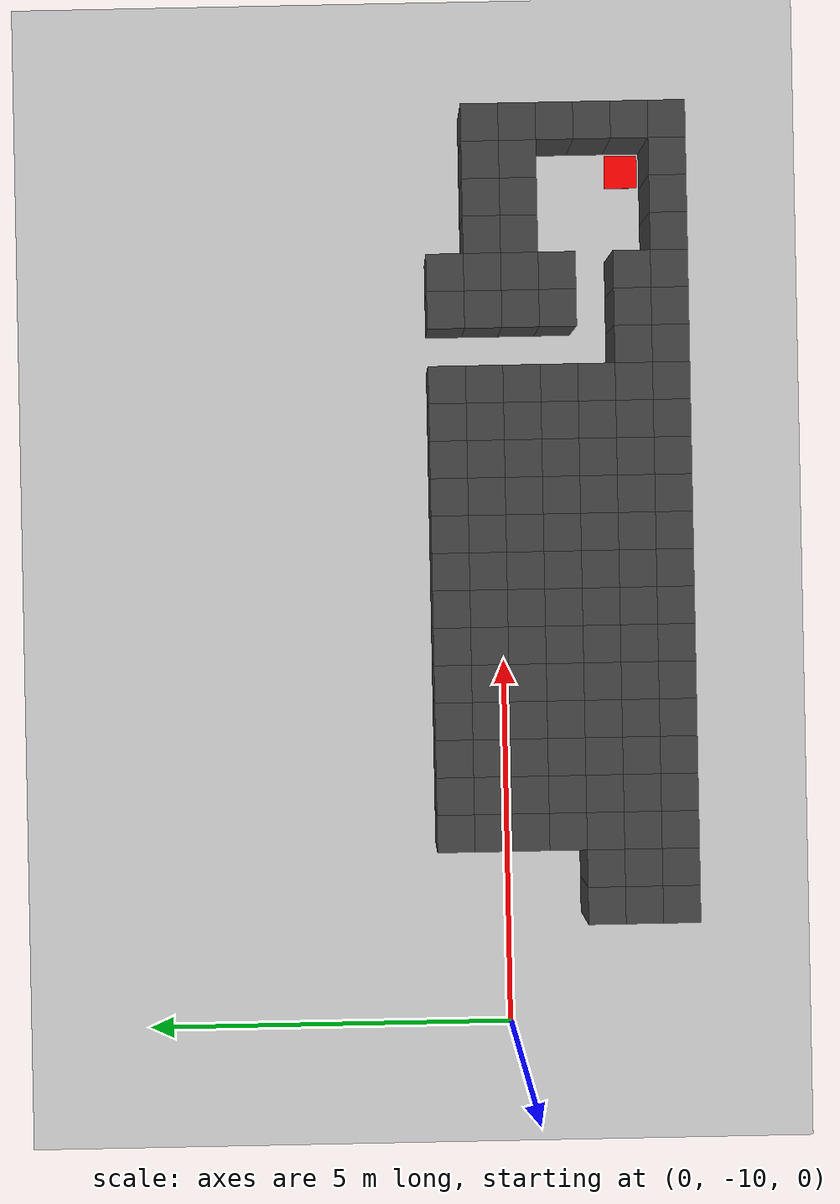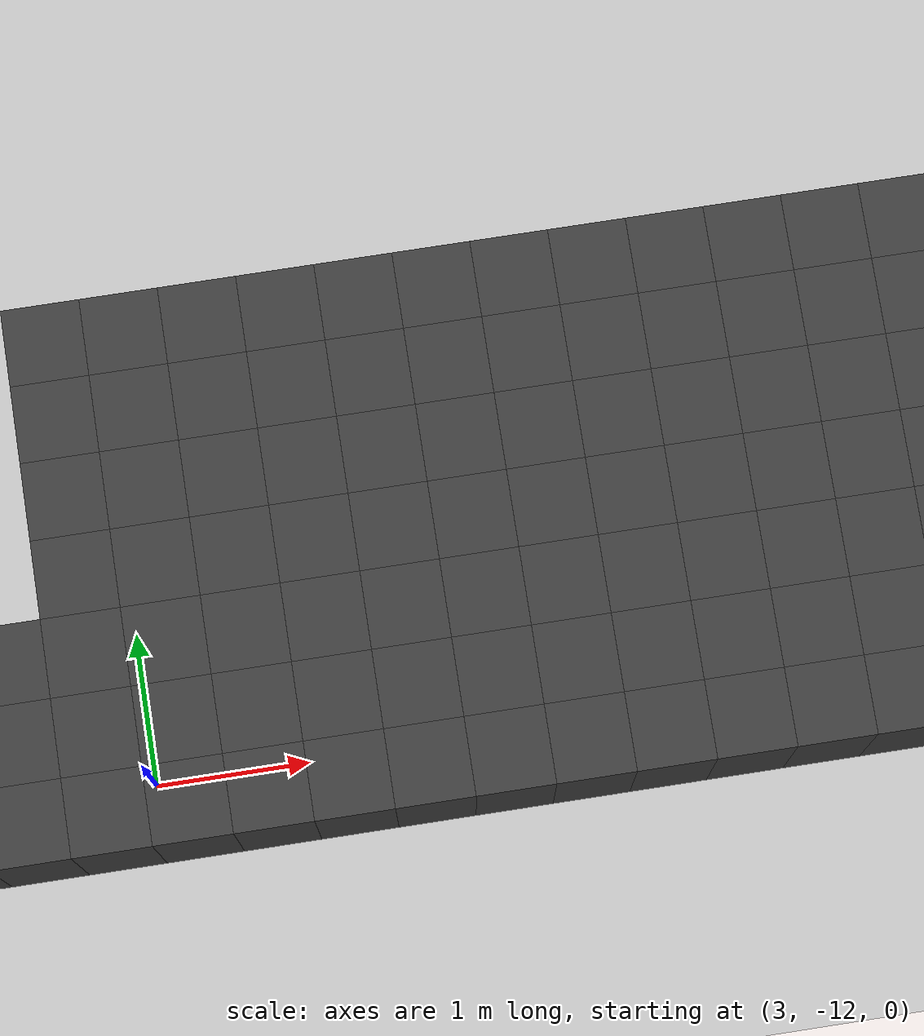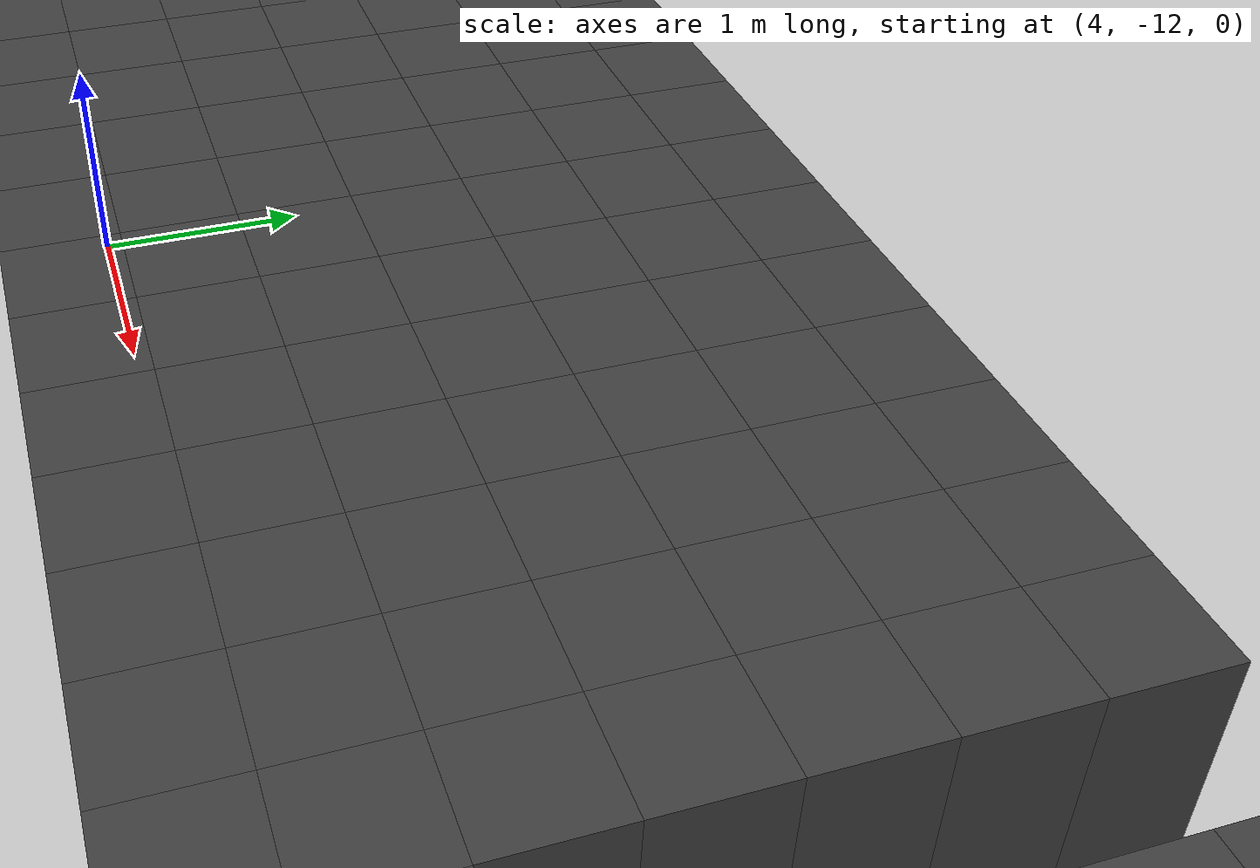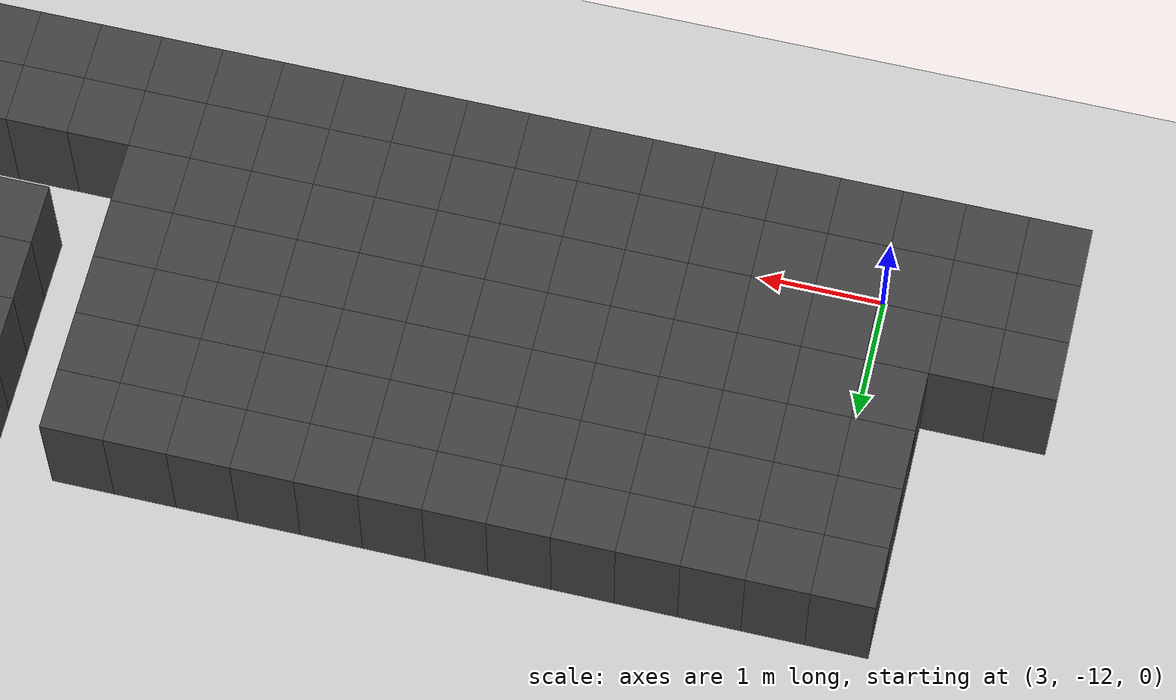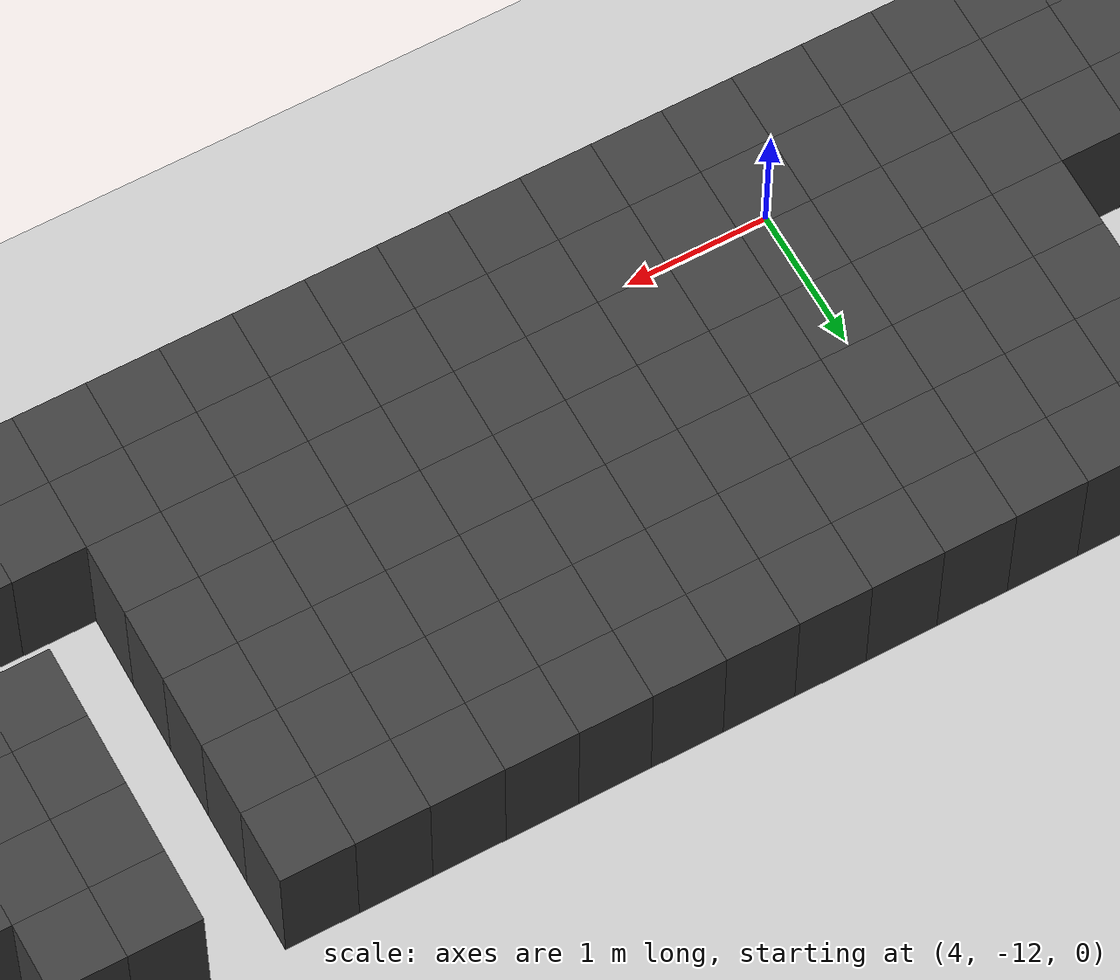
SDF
<sdf version="1.7">
 <world name="map_14494">
  <model name="ground_plane">
   <static>true</static>
   <link name="link">
    <collision name="collision">
     <geometry><plane><normal>0 0 1</normal><size>200 200</size></plane></geometry>
    </collision>
    <visual name="visual">
     <geometry><plane><normal>0 0 1</normal><size>200 200</size></plane></geometry>
     <material><ambient>0.8 0.8 0.8 1</ambient><diffuse>0.8 0.8 0.8 1</diffuse></material>
    </visual>
   </link>
  </model>
  <model name="maze_environment">
   <static>true</static>
   <link name="wall_1557">
    <pose>2.750 -9.250 0.500 0 0 0</pose>
    <collision name="col"><geometry><box><size>0.5 0.5 1.0</size></box></geometry></collision>
    <visual name="vis">
     <geometry><box><size>0.5 0.5 1.0</size></box></geometry>
     <material><ambient>0.15 0.15 0.15 1</ambient><diffuse>0.25 0.25 0.25 1</diffuse></material>
    </visual>
   </link>
   <link name="wall_1558">
    <pose>3.250 -9.250 0.500 0 0 0</pose>
    <collision name="col"><geometry><box><size>0.5 0.5 1.0</size></box></geometry></collision>
    <visual name="vis">
     <geometry><box><size>0.5 0.5 1.0</size></box></geometry>
     <material><ambient>0.15 0.15 0.15 1</ambient><diffuse>0.25 0.25 0.25 1</diffuse></material>
    </visual>
   </link>
   <link name="wall_1559">
    <pose>3.750 -9.250 0.500 0 0 0</pose>
    <collision name="col"><geometry><box><size>0.5 0.5 1.0</size></box></geometry></collision>
    <visual name="vis">
     <geometry><box><size>0.5 0.5 1.0</size></box></geometry>
     <material><ambient>0.15 0.15 0.15 1</ambient><diffuse>0.25 0.25 0.25 1</diffuse></material>
    </visual>
   </link>
   <link name="wall_1560">
    <pose>4.250 -9.250 0.500 0 0 0</pose>
    <collision name="col"><geometry><box><size>0.5 0.5 1.0</size></box></geometry></collision>
    <visual name="vis">
     <geometry><box><size>0.5 0.5 1.0</size></box></geometry>
     <material><ambient>0.15 0.15 0.15 1</ambient><diffuse>0.25 0.25 0.25 1</diffuse></material>
    </visual>
   </link>
   <link name="wall_1561">
    <pose>4.750 -9.250 0.500 0 0 0</pose>
    <collision name="col"><geometry><box><size>0.5 0.5 1.0</size></box></geometry></collision>
    <visual name="vis">
     <geometry><box><size>0.5 0.5 1.0</size></box></geometry>
     <material><ambient>0.15 0.15 0.15 1</ambient><diffuse>0.25 0.25 0.25 1</diffuse></material>
    </visual>
   </link>
   <link name="wall_1562">
    <pose>5.250 -9.250 0.500 0 0 0</pose>
    <collision name="col"><geometry><box><size>0.5 0.5 1.0</size></box></geometry></collision>
    <visual name="vis">
     <geometry><box><size>0.5 0.5 1.0</size></box></geometry>
     <material><ambient>0.15 0.15 0.15 1</ambient><diffuse>0.25 0.25 0.25 1</diffuse></material>
    </visual>
   </link>
   <link name="wall_1563">
    <pose>5.750 -9.250 0.500 0 0 0</pose>
    <collision name="col"><geometry><box><size>0.5 0.5 1.0</size></box></geometry></collision>
    <visual name="vis">
     <geometry><box><size>0.5 0.5 1.0</size></box></geometry>
     <material><ambient>0.15 0.15 0.15 1</ambient><diffuse>0.25 0.25 0.25 1</diffuse></material>
    </visual>
   </link>
   <link name="wall_1564">
    <pose>6.250 -9.250 0.500 0 0 0</pose>
    <collision name="col"><geometry><box><size>0.5 0.5 1.0</size></box></geometry></collision>
    <visual name="vis">
     <geometry><box><size>0.5 0.5 1.0</size></box></geometry>
     <material><ambient>0.15 0.15 0.15 1</ambient><diffuse>0.25 0.25 0.25 1</diffuse></material>
    </visual>
   </link>
   <link name="wall_1565">
    <pose>6.750 -9.250 0.500 0 0 0</pose>
    <collision name="col"><geometry><box><size>0.5 0.5 1.0</size></box></geometry></collision>
    <visual name="vis">
     <geometry><box><size>0.5 0.5 1.0</size></box></geometry>
     <material><ambient>0.15 0.15 0.15 1</ambient><diffuse>0.25 0.25 0.25 1</diffuse></material>
    </visual>
   </link>
   <link name="wall_1566">
    <pose>7.250 -9.250 0.500 0 0 0</pose>
    <collision name="col"><geometry><box><size>0.5 0.5 1.0</size></box></geometry></collision>
    <visual name="vis">
     <geometry><box><size>0.5 0.5 1.0</size></box></geometry>
     <material><ambient>0.15 0.15 0.15 1</ambient><diffuse>0.25 0.25 0.25 1</diffuse></material>
    </visual>
   </link>
   <link name="wall_1567">
    <pose>7.750 -9.250 0.500 0 0 0</pose>
    <collision name="col"><geometry><box><size>0.5 0.5 1.0</size></box></geometry></collision>
    <visual name="vis">
     <geometry><box><size>0.5 0.5 1.0</size></box></geometry>
     <material><ambient>0.15 0.15 0.15 1</ambient><diffuse>0.25 0.25 0.25 1</diffuse></material>
    </visual>
   </link>
   <link name="wall_1568">
    <pose>8.250 -9.250 0.500 0 0 0</pose>
    <collision name="col"><geometry><box><size>0.5 0.5 1.0</size></box></geometry></collision>
    <visual name="vis">
     <geometry><box><size>0.5 0.5 1.0</size></box></geometry>
     <material><ambient>0.15 0.15 0.15 1</ambient><diffuse>0.25 0.25 0.25 1</diffuse></material>
    </visual>
   </link>
   <link name="wall_1569">
    <pose>8.750 -9.250 0.500 0 0 0</pose>
    <collision name="col"><geometry><box><size>0.5 0.5 1.0</size></box></geometry></collision>
    <visual name="vis">
     <geometry><box><size>0.5 0.5 1.0</size></box></geometry>
     <material><ambient>0.15 0.15 0.15 1</ambient><diffuse>0.25 0.25 0.25 1</diffuse></material>
    </visual>
   </link>
   <link name="wall_1570">
    <pose>9.750 -9.250 0.500 0 0 0</pose>
    <collision name="col"><geometry><box><size>0.5 0.5 1.0</size></box></geometry></collision>
    <visual name="vis">
     <geometry><box><size>0.5 0.5 1.0</size></box></geometry>
     <material><ambient>0.15 0.15 0.15 1</ambient><diffuse>0.25 0.25 0.25 1</diffuse></material>
    </visual>
   </link>
   <link name="wall_1571">
    <pose>10.250 -9.250 0.500 0 0 0</pose>
    <collision name="col"><geometry><box><size>0.5 0.5 1.0</size></box></geometry></collision>
    <visual name="vis">
     <geometry><box><size>0.5 0.5 1.0</size></box></geometry>
     <material><ambient>0.15 0.15 0.15 1</ambient><diffuse>0.25 0.25 0.25 1</diffuse></material>
    </visual>
   </link>
   <link name="wall_1583">
    <pose>2.750 -9.750 0.500 0 0 0</pose>
    <collision name="col"><geometry><box><size>0.5 0.5 1.0</size></box></geometry></collision>
    <visual name="vis">
     <geometry><box><size>0.5 0.5 1.0</size></box></geometry>
     <material><ambient>0.15 0.15 0.15 1</ambient><diffuse>0.25 0.25 0.25 1</diffuse></material>
    </visual>
   </link>
   <link name="wall_1584">
    <pose>3.250 -9.750 0.500 0 0 0</pose>
    <collision name="col"><geometry><box><size>0.5 0.5 1.0</size></box></geometry></collision>
    <visual name="vis">
     <geometry><box><size>0.5 0.5 1.0</size></box></geometry>
     <material><ambient>0.15 0.15 0.15 1</ambient><diffuse>0.25 0.25 0.25 1</diffuse></material>
    </visual>
   </link>
   <link name="wall_1585">
    <pose>3.750 -9.750 0.500 0 0 0</pose>
    <collision name="col"><geometry><box><size>0.5 0.5 1.0</size></box></geometry></collision>
    <visual name="vis">
     <geometry><box><size>0.5 0.5 1.0</size></box></geometry>
     <material><ambient>0.15 0.15 0.15 1</ambient><diffuse>0.25 0.25 0.25 1</diffuse></material>
    </visual>
   </link>
   <link name="wall_1586">
    <pose>4.250 -9.750 0.500 0 0 0</pose>
    <collision name="col"><geometry><box><size>0.5 0.5 1.0</size></box></geometry></collision>
    <visual name="vis">
     <geometry><box><size>0.5 0.5 1.0</size></box></geometry>
     <material><ambient>0.15 0.15 0.15 1</ambient><diffuse>0.25 0.25 0.25 1</diffuse></material>
    </visual>
   </link>
   <link name="wall_1587">
    <pose>4.750 -9.750 0.500 0 0 0</pose>
    <collision name="col"><geometry><box><size>0.5 0.5 1.0</size></box></geometry></collision>
    <visual name="vis">
     <geometry><box><size>0.5 0.5 1.0</size></box></geometry>
     <material><ambient>0.15 0.15 0.15 1</ambient><diffuse>0.25 0.25 0.25 1</diffuse></material>
    </visual>
   </link>
   <link name="wall_1588">
    <pose>5.250 -9.750 0.500 0 0 0</pose>
    <collision name="col"><geometry><box><size>0.5 0.5 1.0</size></box></geometry></collision>
    <visual name="vis">
     <geometry><box><size>0.5 0.5 1.0</size></box></geometry>
     <material><ambient>0.15 0.15 0.15 1</ambient><diffuse>0.25 0.25 0.25 1</diffuse></material>
    </visual>
   </link>
   <link name="wall_1589">
    <pose>5.750 -9.750 0.500 0 0 0</pose>
    <collision name="col"><geometry><box><size>0.5 0.5 1.0</size></box></geometry></collision>
    <visual name="vis">
     <geometry><box><size>0.5 0.5 1.0</size></box></geometry>
     <material><ambient>0.15 0.15 0.15 1</ambient><diffuse>0.25 0.25 0.25 1</diffuse></material>
    </visual>
   </link>
   <link name="wall_1590">
    <pose>6.250 -9.750 0.500 0 0 0</pose>
    <collision name="col"><geometry><box><size>0.5 0.5 1.0</size></box></geometry></collision>
    <visual name="vis">
     <geometry><box><size>0.5 0.5 1.0</size></box></geometry>
     <material><ambient>0.15 0.15 0.15 1</ambient><diffuse>0.25 0.25 0.25 1</diffuse></material>
    </visual>
   </link>
   <link name="wall_1591">
    <pose>6.750 -9.750 0.500 0 0 0</pose>
    <collision name="col"><geometry><box><size>0.5 0.5 1.0</size></box></geometry></collision>
    <visual name="vis">
     <geometry><box><size>0.5 0.5 1.0</size></box></geometry>
     <material><ambient>0.15 0.15 0.15 1</ambient><diffuse>0.25 0.25 0.25 1</diffuse></material>
    </visual>
   </link>
   <link name="wall_1592">
    <pose>7.250 -9.750 0.500 0 0 0</pose>
    <collision name="col"><geometry><box><size>0.5 0.5 1.0</size></box></geometry></collision>
    <visual name="vis">
     <geometry><box><size>0.5 0.5 1.0</size></box></geometry>
     <material><ambient>0.15 0.15 0.15 1</ambient><diffuse>0.25 0.25 0.25 1</diffuse></material>
    </visual>
   </link>
   <link name="wall_1593">
    <pose>7.750 -9.750 0.500 0 0 0</pose>
    <collision name="col"><geometry><box><size>0.5 0.5 1.0</size></box></geometry></collision>
    <visual name="vis">
     <geometry><box><size>0.5 0.5 1.0</size></box></geometry>
     <material><ambient>0.15 0.15 0.15 1</ambient><diffuse>0.25 0.25 0.25 1</diffuse></material>
    </visual>
   </link>
   <link name="wall_1594">
    <pose>8.250 -9.750 0.500 0 0 0</pose>
    <collision name="col"><geometry><box><size>0.5 0.5 1.0</size></box></geometry></collision>
    <visual name="vis">
     <geometry><box><size>0.5 0.5 1.0</size></box></geometry>
     <material><ambient>0.15 0.15 0.15 1</ambient><diffuse>0.25 0.25 0.25 1</diffuse></material>
    </visual>
   </link>
   <link name="wall_1595">
    <pose>8.750 -9.750 0.500 0 0 0</pose>
    <collision name="col"><geometry><box><size>0.5 0.5 1.0</size></box></geometry></collision>
    <visual name="vis">
     <geometry><box><size>0.5 0.5 1.0</size></box></geometry>
     <material><ambient>0.15 0.15 0.15 1</ambient><diffuse>0.25 0.25 0.25 1</diffuse></material>
    </visual>
   </link>
   <link name="wall_1596">
    <pose>9.750 -9.750 0.500 0 0 0</pose>
    <collision name="col"><geometry><box><size>0.5 0.5 1.0</size></box></geometry></collision>
    <visual name="vis">
     <geometry><box><size>0.5 0.5 1.0</size></box></geometry>
     <material><ambient>0.15 0.15 0.15 1</ambient><diffuse>0.25 0.25 0.25 1</diffuse></material>
    </visual>
   </link>
   <link name="wall_1597">
    <pose>10.250 -9.750 0.500 0 0 0</pose>
    <collision name="col"><geometry><box><size>0.5 0.5 1.0</size></box></geometry></collision>
    <visual name="vis">
     <geometry><box><size>0.5 0.5 1.0</size></box></geometry>
     <material><ambient>0.15 0.15 0.15 1</ambient><diffuse>0.25 0.25 0.25 1</diffuse></material>
    </visual>
   </link>
   <link name="wall_1598">
    <pose>10.750 -9.750 0.500 0 0 0</pose>
    <collision name="col"><geometry><box><size>0.5 0.5 1.0</size></box></geometry></collision>
    <visual name="vis">
     <geometry><box><size>0.5 0.5 1.0</size></box></geometry>
     <material><ambient>0.15 0.15 0.15 1</ambient><diffuse>0.25 0.25 0.25 1</diffuse></material>
    </visual>
   </link>
   <link name="wall_1599">
    <pose>11.250 -9.750 0.500 0 0 0</pose>
    <collision name="col"><geometry><box><size>0.5 0.5 1.0</size></box></geometry></collision>
    <visual name="vis">
     <geometry><box><size>0.5 0.5 1.0</size></box></geometry>
     <material><ambient>0.15 0.15 0.15 1</ambient><diffuse>0.25 0.25 0.25 1</diffuse></material>
    </visual>
   </link>
   <link name="wall_1600">
    <pose>11.750 -9.750 0.500 0 0 0</pose>
    <collision name="col"><geometry><box><size>0.5 0.5 1.0</size></box></geometry></collision>
    <visual name="vis">
     <geometry><box><size>0.5 0.5 1.0</size></box></geometry>
     <material><ambient>0.15 0.15 0.15 1</ambient><diffuse>0.25 0.25 0.25 1</diffuse></material>
    </visual>
   </link>
   <link name="wall_1601">
    <pose>12.250 -9.750 0.500 0 0 0</pose>
    <collision name="col"><geometry><box><size>0.5 0.5 1.0</size></box></geometry></collision>
    <visual name="vis">
     <geometry><box><size>0.5 0.5 1.0</size></box></geometry>
     <material><ambient>0.15 0.15 0.15 1</ambient><diffuse>0.25 0.25 0.25 1</diffuse></material>
    </visual>
   </link>
   <link name="wall_1614">
    <pose>2.750 -10.250 0.500 0 0 0</pose>
    <collision name="col"><geometry><box><size>0.5 0.5 1.0</size></box></geometry></collision>
    <visual name="vis">
     <geometry><box><size>0.5 0.5 1.0</size></box></geometry>
     <material><ambient>0.15 0.15 0.15 1</ambient><diffuse>0.25 0.25 0.25 1</diffuse></material>
    </visual>
   </link>
   <link name="wall_1615">
    <pose>3.250 -10.250 0.500 0 0 0</pose>
    <collision name="col"><geometry><box><size>0.5 0.5 1.0</size></box></geometry></collision>
    <visual name="vis">
     <geometry><box><size>0.5 0.5 1.0</size></box></geometry>
     <material><ambient>0.15 0.15 0.15 1</ambient><diffuse>0.25 0.25 0.25 1</diffuse></material>
    </visual>
   </link>
   <link name="wall_1616">
    <pose>3.750 -10.250 0.500 0 0 0</pose>
    <collision name="col"><geometry><box><size>0.5 0.5 1.0</size></box></geometry></collision>
    <visual name="vis">
     <geometry><box><size>0.5 0.5 1.0</size></box></geometry>
     <material><ambient>0.15 0.15 0.15 1</ambient><diffuse>0.25 0.25 0.25 1</diffuse></material>
    </visual>
   </link>
   <link name="wall_1617">
    <pose>4.250 -10.250 0.500 0 0 0</pose>
    <collision name="col"><geometry><box><size>0.5 0.5 1.0</size></box></geometry></collision>
    <visual name="vis">
     <geometry><box><size>0.5 0.5 1.0</size></box></geometry>
     <material><ambient>0.15 0.15 0.15 1</ambient><diffuse>0.25 0.25 0.25 1</diffuse></material>
    </visual>
   </link>
   <link name="wall_1618">
    <pose>4.750 -10.250 0.500 0 0 0</pose>
    <collision name="col"><geometry><box><size>0.5 0.5 1.0</size></box></geometry></collision>
    <visual name="vis">
     <geometry><box><size>0.5 0.5 1.0</size></box></geometry>
     <material><ambient>0.15 0.15 0.15 1</ambient><diffuse>0.25 0.25 0.25 1</diffuse></material>
    </visual>
   </link>
   <link name="wall_1619">
    <pose>5.250 -10.250 0.500 0 0 0</pose>
    <collision name="col"><geometry><box><size>0.5 0.5 1.0</size></box></geometry></collision>
    <visual name="vis">
     <geometry><box><size>0.5 0.5 1.0</size></box></geometry>
     <material><ambient>0.15 0.15 0.15 1</ambient><diffuse>0.25 0.25 0.25 1</diffuse></material>
    </visual>
   </link>
   <link name="wall_1620">
    <pose>5.750 -10.250 0.500 0 0 0</pose>
    <collision name="col"><geometry><box><size>0.5 0.5 1.0</size></box></geometry></collision>
    <visual name="vis">
     <geometry><box><size>0.5 0.5 1.0</size></box></geometry>
     <material><ambient>0.15 0.15 0.15 1</ambient><diffuse>0.25 0.25 0.25 1</diffuse></material>
    </visual>
   </link>
   <link name="wall_1621">
    <pose>6.250 -10.250 0.500 0 0 0</pose>
    <collision name="col"><geometry><box><size>0.5 0.5 1.0</size></box></geometry></collision>
    <visual name="vis">
     <geometry><box><size>0.5 0.5 1.0</size></box></geometry>
     <material><ambient>0.15 0.15 0.15 1</ambient><diffuse>0.25 0.25 0.25 1</diffuse></material>
    </visual>
   </link>
   <link name="wall_1622">
    <pose>6.750 -10.250 0.500 0 0 0</pose>
    <collision name="col"><geometry><box><size>0.5 0.5 1.0</size></box></geometry></collision>
    <visual name="vis">
     <geometry><box><size>0.5 0.5 1.0</size></box></geometry>
     <material><ambient>0.15 0.15 0.15 1</ambient><diffuse>0.25 0.25 0.25 1</diffuse></material>
    </visual>
   </link>
   <link name="wall_1623">
    <pose>7.250 -10.250 0.500 0 0 0</pose>
    <collision name="col"><geometry><box><size>0.5 0.5 1.0</size></box></geometry></collision>
    <visual name="vis">
     <geometry><box><size>0.5 0.5 1.0</size></box></geometry>
     <material><ambient>0.15 0.15 0.15 1</ambient><diffuse>0.25 0.25 0.25 1</diffuse></material>
    </visual>
   </link>
   <link name="wall_1624">
    <pose>7.750 -10.250 0.500 0 0 0</pose>
    <collision name="col"><geometry><box><size>0.5 0.5 1.0</size></box></geometry></collision>
    <visual name="vis">
     <geometry><box><size>0.5 0.5 1.0</size></box></geometry>
     <material><ambient>0.15 0.15 0.15 1</ambient><diffuse>0.25 0.25 0.25 1</diffuse></material>
    </visual>
   </link>
   <link name="wall_1625">
    <pose>8.250 -10.250 0.500 0 0 0</pose>
    <collision name="col"><geometry><box><size>0.5 0.5 1.0</size></box></geometry></collision>
    <visual name="vis">
     <geometry><box><size>0.5 0.5 1.0</size></box></geometry>
     <material><ambient>0.15 0.15 0.15 1</ambient><diffuse>0.25 0.25 0.25 1</diffuse></material>
    </visual>
   </link>
   <link name="wall_1626">
    <pose>8.750 -10.250 0.500 0 0 0</pose>
    <collision name="col"><geometry><box><size>0.5 0.5 1.0</size></box></geometry></collision>
    <visual name="vis">
     <geometry><box><size>0.5 0.5 1.0</size></box></geometry>
     <material><ambient>0.15 0.15 0.15 1</ambient><diffuse>0.25 0.25 0.25 1</diffuse></material>
    </visual>
   </link>
   <link name="wall_1627">
    <pose>9.750 -10.250 0.500 0 0 0</pose>
    <collision name="col"><geometry><box><size>0.5 0.5 1.0</size></box></geometry></collision>
    <visual name="vis">
     <geometry><box><size>0.5 0.5 1.0</size></box></geometry>
     <material><ambient>0.15 0.15 0.15 1</ambient><diffuse>0.25 0.25 0.25 1</diffuse></material>
    </visual>
   </link>
   <link name="wall_1628">
    <pose>10.250 -10.250 0.500 0 0 0</pose>
    <collision name="col"><geometry><box><size>0.5 0.5 1.0</size></box></geometry></collision>
    <visual name="vis">
     <geometry><box><size>0.5 0.5 1.0</size></box></geometry>
     <material><ambient>0.15 0.15 0.15 1</ambient><diffuse>0.25 0.25 0.25 1</diffuse></material>
    </visual>
   </link>
   <link name="wall_1629">
    <pose>10.750 -10.250 0.500 0 0 0</pose>
    <collision name="col"><geometry><box><size>0.5 0.5 1.0</size></box></geometry></collision>
    <visual name="vis">
     <geometry><box><size>0.5 0.5 1.0</size></box></geometry>
     <material><ambient>0.15 0.15 0.15 1</ambient><diffuse>0.25 0.25 0.25 1</diffuse></material>
    </visual>
   </link>
   <link name="wall_1630">
    <pose>11.250 -10.250 0.500 0 0 0</pose>
    <collision name="col"><geometry><box><size>0.5 0.5 1.0</size></box></geometry></collision>
    <visual name="vis">
     <geometry><box><size>0.5 0.5 1.0</size></box></geometry>
     <material><ambient>0.15 0.15 0.15 1</ambient><diffuse>0.25 0.25 0.25 1</diffuse></material>
    </visual>
   </link>
   <link name="wall_1631">
    <pose>11.750 -10.250 0.500 0 0 0</pose>
    <collision name="col"><geometry><box><size>0.5 0.5 1.0</size></box></geometry></collision>
    <visual name="vis">
     <geometry><box><size>0.5 0.5 1.0</size></box></geometry>
     <material><ambient>0.15 0.15 0.15 1</ambient><diffuse>0.25 0.25 0.25 1</diffuse></material>
    </visual>
   </link>
   <link name="wall_1632">
    <pose>12.250 -10.250 0.500 0 0 0</pose>
    <collision name="col"><geometry><box><size>0.5 0.5 1.0</size></box></geometry></collision>
    <visual name="vis">
     <geometry><box><size>0.5 0.5 1.0</size></box></geometry>
     <material><ambient>0.15 0.15 0.15 1</ambient><diffuse>0.25 0.25 0.25 1</diffuse></material>
    </visual>
   </link>
   <link name="wall_1645">
    <pose>2.750 -10.750 0.500 0 0 0</pose>
    <collision name="col"><geometry><box><size>0.5 0.5 1.0</size></box></geometry></collision>
    <visual name="vis">
     <geometry><box><size>0.5 0.5 1.0</size></box></geometry>
     <material><ambient>0.15 0.15 0.15 1</ambient><diffuse>0.25 0.25 0.25 1</diffuse></material>
    </visual>
   </link>
   <link name="wall_1646">
    <pose>3.250 -10.750 0.500 0 0 0</pose>
    <collision name="col"><geometry><box><size>0.5 0.5 1.0</size></box></geometry></collision>
    <visual name="vis">
     <geometry><box><size>0.5 0.5 1.0</size></box></geometry>
     <material><ambient>0.15 0.15 0.15 1</ambient><diffuse>0.25 0.25 0.25 1</diffuse></material>
    </visual>
   </link>
   <link name="wall_1647">
    <pose>3.750 -10.750 0.500 0 0 0</pose>
    <collision name="col"><geometry><box><size>0.5 0.5 1.0</size></box></geometry></collision>
    <visual name="vis">
     <geometry><box><size>0.5 0.5 1.0</size></box></geometry>
     <material><ambient>0.15 0.15 0.15 1</ambient><diffuse>0.25 0.25 0.25 1</diffuse></material>
    </visual>
   </link>
   <link name="wall_1648">
    <pose>4.250 -10.750 0.500 0 0 0</pose>
    <collision name="col"><geometry><box><size>0.5 0.5 1.0</size></box></geometry></collision>
    <visual name="vis">
     <geometry><box><size>0.5 0.5 1.0</size></box></geometry>
     <material><ambient>0.15 0.15 0.15 1</ambient><diffuse>0.25 0.25 0.25 1</diffuse></material>
    </visual>
   </link>
   <link name="wall_1649">
    <pose>4.750 -10.750 0.500 0 0 0</pose>
    <collision name="col"><geometry><box><size>0.5 0.5 1.0</size></box></geometry></collision>
    <visual name="vis">
     <geometry><box><size>0.5 0.5 1.0</size></box></geometry>
     <material><ambient>0.15 0.15 0.15 1</ambient><diffuse>0.25 0.25 0.25 1</diffuse></material>
    </visual>
   </link>
   <link name="wall_1650">
    <pose>5.250 -10.750 0.500 0 0 0</pose>
    <collision name="col"><geometry><box><size>0.5 0.5 1.0</size></box></geometry></collision>
    <visual name="vis">
     <geometry><box><size>0.5 0.5 1.0</size></box></geometry>
     <material><ambient>0.15 0.15 0.15 1</ambient><diffuse>0.25 0.25 0.25 1</diffuse></material>
    </visual>
   </link>
   <link name="wall_1651">
    <pose>5.750 -10.750 0.500 0 0 0</pose>
    <collision name="col"><geometry><box><size>0.5 0.5 1.0</size></box></geometry></collision>
    <visual name="vis">
     <geometry><box><size>0.5 0.5 1.0</size></box></geometry>
     <material><ambient>0.15 0.15 0.15 1</ambient><diffuse>0.25 0.25 0.25 1</diffuse></material>
    </visual>
   </link>
   <link name="wall_1652">
    <pose>6.250 -10.750 0.500 0 0 0</pose>
    <collision name="col"><geometry><box><size>0.5 0.5 1.0</size></box></geometry></collision>
    <visual name="vis">
     <geometry><box><size>0.5 0.5 1.0</size></box></geometry>
     <material><ambient>0.15 0.15 0.15 1</ambient><diffuse>0.25 0.25 0.25 1</diffuse></material>
    </visual>
   </link>
   <link name="wall_1653">
    <pose>6.750 -10.750 0.500 0 0 0</pose>
    <collision name="col"><geometry><box><size>0.5 0.5 1.0</size></box></geometry></collision>
    <visual name="vis">
     <geometry><box><size>0.5 0.5 1.0</size></box></geometry>
     <material><ambient>0.15 0.15 0.15 1</ambient><diffuse>0.25 0.25 0.25 1</diffuse></material>
    </visual>
   </link>
   <link name="wall_1654">
    <pose>7.250 -10.750 0.500 0 0 0</pose>
    <collision name="col"><geometry><box><size>0.5 0.5 1.0</size></box></geometry></collision>
    <visual name="vis">
     <geometry><box><size>0.5 0.5 1.0</size></box></geometry>
     <material><ambient>0.15 0.15 0.15 1</ambient><diffuse>0.25 0.25 0.25 1</diffuse></material>
    </visual>
   </link>
   <link name="wall_1655">
    <pose>7.750 -10.750 0.500 0 0 0</pose>
    <collision name="col"><geometry><box><size>0.5 0.5 1.0</size></box></geometry></collision>
    <visual name="vis">
     <geometry><box><size>0.5 0.5 1.0</size></box></geometry>
     <material><ambient>0.15 0.15 0.15 1</ambient><diffuse>0.25 0.25 0.25 1</diffuse></material>
    </visual>
   </link>
   <link name="wall_1656">
    <pose>8.250 -10.750 0.500 0 0 0</pose>
    <collision name="col"><geometry><box><size>0.5 0.5 1.0</size></box></geometry></collision>
    <visual name="vis">
     <geometry><box><size>0.5 0.5 1.0</size></box></geometry>
     <material><ambient>0.15 0.15 0.15 1</ambient><diffuse>0.25 0.25 0.25 1</diffuse></material>
    </visual>
   </link>
   <link name="wall_1657">
    <pose>8.750 -10.750 0.500 0 0 0</pose>
    <collision name="col"><geometry><box><size>0.5 0.5 1.0</size></box></geometry></collision>
    <visual name="vis">
     <geometry><box><size>0.5 0.5 1.0</size></box></geometry>
     <material><ambient>0.15 0.15 0.15 1</ambient><diffuse>0.25 0.25 0.25 1</diffuse></material>
    </visual>
   </link>
   <link name="wall_1658">
    <pose>9.750 -10.750 0.500 0 0 0</pose>
    <collision name="col"><geometry><box><size>0.5 0.5 1.0</size></box></geometry></collision>
    <visual name="vis">
     <geometry><box><size>0.5 0.5 1.0</size></box></geometry>
     <material><ambient>0.15 0.15 0.15 1</ambient><diffuse>0.25 0.25 0.25 1</diffuse></material>
    </visual>
   </link>
   <link name="wall_1659">
    <pose>10.250 -10.750 0.500 0 0 0</pose>
    <collision name="col"><geometry><box><size>0.5 0.5 1.0</size></box></geometry></collision>
    <visual name="vis">
     <geometry><box><size>0.5 0.5 1.0</size></box></geometry>
     <material><ambient>0.15 0.15 0.15 1</ambient><diffuse>0.25 0.25 0.25 1</diffuse></material>
    </visual>
   </link>
   <link name="wall_1660">
    <pose>12.250 -10.750 0.500 0 0 0</pose>
    <collision name="col"><geometry><box><size>0.5 0.5 1.0</size></box></geometry></collision>
    <visual name="vis">
     <geometry><box><size>0.5 0.5 1.0</size></box></geometry>
     <material><ambient>0.15 0.15 0.15 1</ambient><diffuse>0.25 0.25 0.25 1</diffuse></material>
    </visual>
   </link>
   <link name="wall_1682">
    <pose>1.750 -11.250 0.500 0 0 0</pose>
    <collision name="col"><geometry><box><size>0.5 0.5 1.0</size></box></geometry></collision>
    <visual name="vis">
     <geometry><box><size>0.5 0.5 1.0</size></box></geometry>
     <material><ambient>0.15 0.15 0.15 1</ambient><diffuse>0.25 0.25 0.25 1</diffuse></material>
    </visual>
   </link>
   <link name="wall_1683">
    <pose>2.250 -11.250 0.500 0 0 0</pose>
    <collision name="col"><geometry><box><size>0.5 0.5 1.0</size></box></geometry></collision>
    <visual name="vis">
     <geometry><box><size>0.5 0.5 1.0</size></box></geometry>
     <material><ambient>0.15 0.15 0.15 1</ambient><diffuse>0.25 0.25 0.25 1</diffuse></material>
    </visual>
   </link>
   <link name="wall_1684">
    <pose>2.750 -11.250 0.500 0 0 0</pose>
    <collision name="col"><geometry><box><size>0.5 0.5 1.0</size></box></geometry></collision>
    <visual name="vis">
     <geometry><box><size>0.5 0.5 1.0</size></box></geometry>
     <material><ambient>0.15 0.15 0.15 1</ambient><diffuse>0.25 0.25 0.25 1</diffuse></material>
    </visual>
   </link>
   <link name="wall_1685">
    <pose>3.250 -11.250 0.500 0 0 0</pose>
    <collision name="col"><geometry><box><size>0.5 0.5 1.0</size></box></geometry></collision>
    <visual name="vis">
     <geometry><box><size>0.5 0.5 1.0</size></box></geometry>
     <material><ambient>0.15 0.15 0.15 1</ambient><diffuse>0.25 0.25 0.25 1</diffuse></material>
    </visual>
   </link>
   <link name="wall_1686">
    <pose>3.750 -11.250 0.500 0 0 0</pose>
    <collision name="col"><geometry><box><size>0.5 0.5 1.0</size></box></geometry></collision>
    <visual name="vis">
     <geometry><box><size>0.5 0.5 1.0</size></box></geometry>
     <material><ambient>0.15 0.15 0.15 1</ambient><diffuse>0.25 0.25 0.25 1</diffuse></material>
    </visual>
   </link>
   <link name="wall_1687">
    <pose>4.250 -11.250 0.500 0 0 0</pose>
    <collision name="col"><geometry><box><size>0.5 0.5 1.0</size></box></geometry></collision>
    <visual name="vis">
     <geometry><box><size>0.5 0.5 1.0</size></box></geometry>
     <material><ambient>0.15 0.15 0.15 1</ambient><diffuse>0.25 0.25 0.25 1</diffuse></material>
    </visual>
   </link>
   <link name="wall_1688">
    <pose>4.750 -11.250 0.500 0 0 0</pose>
    <collision name="col"><geometry><box><size>0.5 0.5 1.0</size></box></geometry></collision>
    <visual name="vis">
     <geometry><box><size>0.5 0.5 1.0</size></box></geometry>
     <material><ambient>0.15 0.15 0.15 1</ambient><diffuse>0.25 0.25 0.25 1</diffuse></material>
    </visual>
   </link>
   <link name="wall_1689">
    <pose>5.250 -11.250 0.500 0 0 0</pose>
    <collision name="col"><geometry><box><size>0.5 0.5 1.0</size></box></geometry></collision>
    <visual name="vis">
     <geometry><box><size>0.5 0.5 1.0</size></box></geometry>
     <material><ambient>0.15 0.15 0.15 1</ambient><diffuse>0.25 0.25 0.25 1</diffuse></material>
    </visual>
   </link>
   <link name="wall_1690">
    <pose>5.750 -11.250 0.500 0 0 0</pose>
    <collision name="col"><geometry><box><size>0.5 0.5 1.0</size></box></geometry></collision>
    <visual name="vis">
     <geometry><box><size>0.5 0.5 1.0</size></box></geometry>
     <material><ambient>0.15 0.15 0.15 1</ambient><diffuse>0.25 0.25 0.25 1</diffuse></material>
    </visual>
   </link>
   <link name="wall_1691">
    <pose>6.250 -11.250 0.500 0 0 0</pose>
    <collision name="col"><geometry><box><size>0.5 0.5 1.0</size></box></geometry></collision>
    <visual name="vis">
     <geometry><box><size>0.5 0.5 1.0</size></box></geometry>
     <material><ambient>0.15 0.15 0.15 1</ambient><diffuse>0.25 0.25 0.25 1</diffuse></material>
    </visual>
   </link>
   <link name="wall_1692">
    <pose>6.750 -11.250 0.500 0 0 0</pose>
    <collision name="col"><geometry><box><size>0.5 0.5 1.0</size></box></geometry></collision>
    <visual name="vis">
     <geometry><box><size>0.5 0.5 1.0</size></box></geometry>
     <material><ambient>0.15 0.15 0.15 1</ambient><diffuse>0.25 0.25 0.25 1</diffuse></material>
    </visual>
   </link>
   <link name="wall_1693">
    <pose>7.250 -11.250 0.500 0 0 0</pose>
    <collision name="col"><geometry><box><size>0.5 0.5 1.0</size></box></geometry></collision>
    <visual name="vis">
     <geometry><box><size>0.5 0.5 1.0</size></box></geometry>
     <material><ambient>0.15 0.15 0.15 1</ambient><diffuse>0.25 0.25 0.25 1</diffuse></material>
    </visual>
   </link>
   <link name="wall_1694">
    <pose>7.750 -11.250 0.500 0 0 0</pose>
    <collision name="col"><geometry><box><size>0.5 0.5 1.0</size></box></geometry></collision>
    <visual name="vis">
     <geometry><box><size>0.5 0.5 1.0</size></box></geometry>
     <material><ambient>0.15 0.15 0.15 1</ambient><diffuse>0.25 0.25 0.25 1</diffuse></material>
    </visual>
   </link>
   <link name="wall_1695">
    <pose>8.250 -11.250 0.500 0 0 0</pose>
    <collision name="col"><geometry><box><size>0.5 0.5 1.0</size></box></geometry></collision>
    <visual name="vis">
     <geometry><box><size>0.5 0.5 1.0</size></box></geometry>
     <material><ambient>0.15 0.15 0.15 1</ambient><diffuse>0.25 0.25 0.25 1</diffuse></material>
    </visual>
   </link>
   <link name="wall_1696">
    <pose>8.750 -11.250 0.500 0 0 0</pose>
    <collision name="col"><geometry><box><size>0.5 0.5 1.0</size></box></geometry></collision>
    <visual name="vis">
     <geometry><box><size>0.5 0.5 1.0</size></box></geometry>
     <material><ambient>0.15 0.15 0.15 1</ambient><diffuse>0.25 0.25 0.25 1</diffuse></material>
    </visual>
   </link>
   <link name="wall_1697">
    <pose>12.250 -11.250 0.500 0 0 0</pose>
    <collision name="col"><geometry><box><size>0.5 0.5 1.0</size></box></geometry></collision>
    <visual name="vis">
     <geometry><box><size>0.5 0.5 1.0</size></box></geometry>
     <material><ambient>0.15 0.15 0.15 1</ambient><diffuse>0.25 0.25 0.25 1</diffuse></material>
    </visual>
   </link>
   <link name="wall_1719">
    <pose>1.750 -11.750 0.500 0 0 0</pose>
    <collision name="col"><geometry><box><size>0.5 0.5 1.0</size></box></geometry></collision>
    <visual name="vis">
     <geometry><box><size>0.5 0.5 1.0</size></box></geometry>
     <material><ambient>0.15 0.15 0.15 1</ambient><diffuse>0.25 0.25 0.25 1</diffuse></material>
    </visual>
   </link>
   <link name="wall_1720">
    <pose>2.250 -11.750 0.500 0 0 0</pose>
    <collision name="col"><geometry><box><size>0.5 0.5 1.0</size></box></geometry></collision>
    <visual name="vis">
     <geometry><box><size>0.5 0.5 1.0</size></box></geometry>
     <material><ambient>0.15 0.15 0.15 1</ambient><diffuse>0.25 0.25 0.25 1</diffuse></material>
    </visual>
   </link>
   <link name="wall_1721">
    <pose>2.750 -11.750 0.500 0 0 0</pose>
    <collision name="col"><geometry><box><size>0.5 0.5 1.0</size></box></geometry></collision>
    <visual name="vis">
     <geometry><box><size>0.5 0.5 1.0</size></box></geometry>
     <material><ambient>0.15 0.15 0.15 1</ambient><diffuse>0.25 0.25 0.25 1</diffuse></material>
    </visual>
   </link>
   <link name="wall_1722">
    <pose>3.250 -11.750 0.500 0 0 0</pose>
    <collision name="col"><geometry><box><size>0.5 0.5 1.0</size></box></geometry></collision>
    <visual name="vis">
     <geometry><box><size>0.5 0.5 1.0</size></box></geometry>
     <material><ambient>0.15 0.15 0.15 1</ambient><diffuse>0.25 0.25 0.25 1</diffuse></material>
    </visual>
   </link>
   <link name="wall_1723">
    <pose>3.750 -11.750 0.500 0 0 0</pose>
    <collision name="col"><geometry><box><size>0.5 0.5 1.0</size></box></geometry></collision>
    <visual name="vis">
     <geometry><box><size>0.5 0.5 1.0</size></box></geometry>
     <material><ambient>0.15 0.15 0.15 1</ambient><diffuse>0.25 0.25 0.25 1</diffuse></material>
    </visual>
   </link>
   <link name="wall_1724">
    <pose>4.250 -11.750 0.500 0 0 0</pose>
    <collision name="col"><geometry><box><size>0.5 0.5 1.0</size></box></geometry></collision>
    <visual name="vis">
     <geometry><box><size>0.5 0.5 1.0</size></box></geometry>
     <material><ambient>0.15 0.15 0.15 1</ambient><diffuse>0.25 0.25 0.25 1</diffuse></material>
    </visual>
   </link>
   <link name="wall_1725">
    <pose>4.750 -11.750 0.500 0 0 0</pose>
    <collision name="col"><geometry><box><size>0.5 0.5 1.0</size></box></geometry></collision>
    <visual name="vis">
     <geometry><box><size>0.5 0.5 1.0</size></box></geometry>
     <material><ambient>0.15 0.15 0.15 1</ambient><diffuse>0.25 0.25 0.25 1</diffuse></material>
    </visual>
   </link>
   <link name="wall_1726">
    <pose>5.250 -11.750 0.500 0 0 0</pose>
    <collision name="col"><geometry><box><size>0.5 0.5 1.0</size></box></geometry></collision>
    <visual name="vis">
     <geometry><box><size>0.5 0.5 1.0</size></box></geometry>
     <material><ambient>0.15 0.15 0.15 1</ambient><diffuse>0.25 0.25 0.25 1</diffuse></material>
    </visual>
   </link>
   <link name="wall_1727">
    <pose>5.750 -11.750 0.500 0 0 0</pose>
    <collision name="col"><geometry><box><size>0.5 0.5 1.0</size></box></geometry></collision>
    <visual name="vis">
     <geometry><box><size>0.5 0.5 1.0</size></box></geometry>
     <material><ambient>0.15 0.15 0.15 1</ambient><diffuse>0.25 0.25 0.25 1</diffuse></material>
    </visual>
   </link>
   <link name="wall_1728">
    <pose>6.250 -11.750 0.500 0 0 0</pose>
    <collision name="col"><geometry><box><size>0.5 0.5 1.0</size></box></geometry></collision>
    <visual name="vis">
     <geometry><box><size>0.5 0.5 1.0</size></box></geometry>
     <material><ambient>0.15 0.15 0.15 1</ambient><diffuse>0.25 0.25 0.25 1</diffuse></material>
    </visual>
   </link>
   <link name="wall_1729">
    <pose>6.750 -11.750 0.500 0 0 0</pose>
    <collision name="col"><geometry><box><size>0.5 0.5 1.0</size></box></geometry></collision>
    <visual name="vis">
     <geometry><box><size>0.5 0.5 1.0</size></box></geometry>
     <material><ambient>0.15 0.15 0.15 1</ambient><diffuse>0.25 0.25 0.25 1</diffuse></material>
    </visual>
   </link>
   <link name="wall_1730">
    <pose>7.250 -11.750 0.500 0 0 0</pose>
    <collision name="col"><geometry><box><size>0.5 0.5 1.0</size></box></geometry></collision>
    <visual name="vis">
     <geometry><box><size>0.5 0.5 1.0</size></box></geometry>
     <material><ambient>0.15 0.15 0.15 1</ambient><diffuse>0.25 0.25 0.25 1</diffuse></material>
    </visual>
   </link>
   <link name="wall_1731">
    <pose>7.750 -11.750 0.500 0 0 0</pose>
    <collision name="col"><geometry><box><size>0.5 0.5 1.0</size></box></geometry></collision>
    <visual name="vis">
     <geometry><box><size>0.5 0.5 1.0</size></box></geometry>
     <material><ambient>0.15 0.15 0.15 1</ambient><diffuse>0.25 0.25 0.25 1</diffuse></material>
    </visual>
   </link>
   <link name="wall_1732">
    <pose>8.250 -11.750 0.500 0 0 0</pose>
    <collision name="col"><geometry><box><size>0.5 0.5 1.0</size></box></geometry></collision>
    <visual name="vis">
     <geometry><box><size>0.5 0.5 1.0</size></box></geometry>
     <material><ambient>0.15 0.15 0.15 1</ambient><diffuse>0.25 0.25 0.25 1</diffuse></material>
    </visual>
   </link>
   <link name="wall_1733">
    <pose>8.750 -11.750 0.500 0 0 0</pose>
    <collision name="col"><geometry><box><size>0.5 0.5 1.0</size></box></geometry></collision>
    <visual name="vis">
     <geometry><box><size>0.5 0.5 1.0</size></box></geometry>
     <material><ambient>0.15 0.15 0.15 1</ambient><diffuse>0.25 0.25 0.25 1</diffuse></material>
    </visual>
   </link>
   <link name="wall_1734">
    <pose>9.250 -11.750 0.500 0 0 0</pose>
    <collision name="col"><geometry><box><size>0.5 0.5 1.0</size></box></geometry></collision>
    <visual name="vis">
     <geometry><box><size>0.5 0.5 1.0</size></box></geometry>
     <material><ambient>0.15 0.15 0.15 1</ambient><diffuse>0.25 0.25 0.25 1</diffuse></material>
    </visual>
   </link>
   <link name="wall_1735">
    <pose>9.750 -11.750 0.500 0 0 0</pose>
    <collision name="col"><geometry><box><size>0.5 0.5 1.0</size></box></geometry></collision>
    <visual name="vis">
     <geometry><box><size>0.5 0.5 1.0</size></box></geometry>
     <material><ambient>0.15 0.15 0.15 1</ambient><diffuse>0.25 0.25 0.25 1</diffuse></material>
    </visual>
   </link>
   <link name="wall_1736">
    <pose>10.250 -11.750 0.500 0 0 0</pose>
    <collision name="col"><geometry><box><size>0.5 0.5 1.0</size></box></geometry></collision>
    <visual name="vis">
     <geometry><box><size>0.5 0.5 1.0</size></box></geometry>
     <material><ambient>0.15 0.15 0.15 1</ambient><diffuse>0.25 0.25 0.25 1</diffuse></material>
    </visual>
   </link>
   <link name="wall_1737">
    <pose>12.250 -11.750 0.500 0 0 0</pose>
    <collision name="col"><geometry><box><size>0.5 0.5 1.0</size></box></geometry></collision>
    <visual name="vis">
     <geometry><box><size>0.5 0.5 1.0</size></box></geometry>
     <material><ambient>0.15 0.15 0.15 1</ambient><diffuse>0.25 0.25 0.25 1</diffuse></material>
    </visual>
   </link>
   <link name="wall_1766">
    <pose>1.750 -12.250 0.500 0 0 0</pose>
    <collision name="col"><geometry><box><size>0.5 0.5 1.0</size></box></geometry></collision>
    <visual name="vis">
     <geometry><box><size>0.5 0.5 1.0</size></box></geometry>
     <material><ambient>0.15 0.15 0.15 1</ambient><diffuse>0.25 0.25 0.25 1</diffuse></material>
    </visual>
   </link>
   <link name="wall_1767">
    <pose>2.250 -12.250 0.500 0 0 0</pose>
    <collision name="col"><geometry><box><size>0.5 0.5 1.0</size></box></geometry></collision>
    <visual name="vis">
     <geometry><box><size>0.5 0.5 1.0</size></box></geometry>
     <material><ambient>0.15 0.15 0.15 1</ambient><diffuse>0.25 0.25 0.25 1</diffuse></material>
    </visual>
   </link>
   <link name="wall_1768">
    <pose>2.750 -12.250 0.500 0 0 0</pose>
    <collision name="col"><geometry><box><size>0.5 0.5 1.0</size></box></geometry></collision>
    <visual name="vis">
     <geometry><box><size>0.5 0.5 1.0</size></box></geometry>
     <material><ambient>0.15 0.15 0.15 1</ambient><diffuse>0.25 0.25 0.25 1</diffuse></material>
    </visual>
   </link>
   <link name="wall_1769">
    <pose>3.250 -12.250 0.500 0 0 0</pose>
    <collision name="col"><geometry><box><size>0.5 0.5 1.0</size></box></geometry></collision>
    <visual name="vis">
     <geometry><box><size>0.5 0.5 1.0</size></box></geometry>
     <material><ambient>0.15 0.15 0.15 1</ambient><diffuse>0.25 0.25 0.25 1</diffuse></material>
    </visual>
   </link>
   <link name="wall_1770">
    <pose>3.750 -12.250 0.500 0 0 0</pose>
    <collision name="col"><geometry><box><size>0.5 0.5 1.0</size></box></geometry></collision>
    <visual name="vis">
     <geometry><box><size>0.5 0.5 1.0</size></box></geometry>
     <material><ambient>0.15 0.15 0.15 1</ambient><diffuse>0.25 0.25 0.25 1</diffuse></material>
    </visual>
   </link>
   <link name="wall_1771">
    <pose>4.250 -12.250 0.500 0 0 0</pose>
    <collision name="col"><geometry><box><size>0.5 0.5 1.0</size></box></geometry></collision>
    <visual name="vis">
     <geometry><box><size>0.5 0.5 1.0</size></box></geometry>
     <material><ambient>0.15 0.15 0.15 1</ambient><diffuse>0.25 0.25 0.25 1</diffuse></material>
    </visual>
   </link>
   <link name="wall_1772">
    <pose>4.750 -12.250 0.500 0 0 0</pose>
    <collision name="col"><geometry><box><size>0.5 0.5 1.0</size></box></geometry></collision>
    <visual name="vis">
     <geometry><box><size>0.5 0.5 1.0</size></box></geometry>
     <material><ambient>0.15 0.15 0.15 1</ambient><diffuse>0.25 0.25 0.25 1</diffuse></material>
    </visual>
   </link>
   <link name="wall_1773">
    <pose>5.250 -12.250 0.500 0 0 0</pose>
    <collision name="col"><geometry><box><size>0.5 0.5 1.0</size></box></geometry></collision>
    <visual name="vis">
     <geometry><box><size>0.5 0.5 1.0</size></box></geometry>
     <material><ambient>0.15 0.15 0.15 1</ambient><diffuse>0.25 0.25 0.25 1</diffuse></material>
    </visual>
   </link>
   <link name="wall_1774">
    <pose>5.750 -12.250 0.500 0 0 0</pose>
    <collision name="col"><geometry><box><size>0.5 0.5 1.0</size></box></geometry></collision>
    <visual name="vis">
     <geometry><box><size>0.5 0.5 1.0</size></box></geometry>
     <material><ambient>0.15 0.15 0.15 1</ambient><diffuse>0.25 0.25 0.25 1</diffuse></material>
    </visual>
   </link>
   <link name="wall_1775">
    <pose>6.250 -12.250 0.500 0 0 0</pose>
    <collision name="col"><geometry><box><size>0.5 0.5 1.0</size></box></geometry></collision>
    <visual name="vis">
     <geometry><box><size>0.5 0.5 1.0</size></box></geometry>
     <material><ambient>0.15 0.15 0.15 1</ambient><diffuse>0.25 0.25 0.25 1</diffuse></material>
    </visual>
   </link>
   <link name="wall_1776">
    <pose>6.750 -12.250 0.500 0 0 0</pose>
    <collision name="col"><geometry><box><size>0.5 0.5 1.0</size></box></geometry></collision>
    <visual name="vis">
     <geometry><box><size>0.5 0.5 1.0</size></box></geometry>
     <material><ambient>0.15 0.15 0.15 1</ambient><diffuse>0.25 0.25 0.25 1</diffuse></material>
    </visual>
   </link>
   <link name="wall_1777">
    <pose>7.250 -12.250 0.500 0 0 0</pose>
    <collision name="col"><geometry><box><size>0.5 0.5 1.0</size></box></geometry></collision>
    <visual name="vis">
     <geometry><box><size>0.5 0.5 1.0</size></box></geometry>
     <material><ambient>0.15 0.15 0.15 1</ambient><diffuse>0.25 0.25 0.25 1</diffuse></material>
    </visual>
   </link>
   <link name="wall_1778">
    <pose>7.750 -12.250 0.500 0 0 0</pose>
    <collision name="col"><geometry><box><size>0.5 0.5 1.0</size></box></geometry></collision>
    <visual name="vis">
     <geometry><box><size>0.5 0.5 1.0</size></box></geometry>
     <material><ambient>0.15 0.15 0.15 1</ambient><diffuse>0.25 0.25 0.25 1</diffuse></material>
    </visual>
   </link>
   <link name="wall_1779">
    <pose>8.250 -12.250 0.500 0 0 0</pose>
    <collision name="col"><geometry><box><size>0.5 0.5 1.0</size></box></geometry></collision>
    <visual name="vis">
     <geometry><box><size>0.5 0.5 1.0</size></box></geometry>
     <material><ambient>0.15 0.15 0.15 1</ambient><diffuse>0.25 0.25 0.25 1</diffuse></material>
    </visual>
   </link>
   <link name="wall_1780">
    <pose>8.750 -12.250 0.500 0 0 0</pose>
    <collision name="col"><geometry><box><size>0.5 0.5 1.0</size></box></geometry></collision>
    <visual name="vis">
     <geometry><box><size>0.5 0.5 1.0</size></box></geometry>
     <material><ambient>0.15 0.15 0.15 1</ambient><diffuse>0.25 0.25 0.25 1</diffuse></material>
    </visual>
   </link>
   <link name="wall_1781">
    <pose>9.250 -12.250 0.500 0 0 0</pose>
    <collision name="col"><geometry><box><size>0.5 0.5 1.0</size></box></geometry></collision>
    <visual name="vis">
     <geometry><box><size>0.5 0.5 1.0</size></box></geometry>
     <material><ambient>0.15 0.15 0.15 1</ambient><diffuse>0.25 0.25 0.25 1</diffuse></material>
    </visual>
   </link>
   <link name="wall_1782">
    <pose>9.750 -12.250 0.500 0 0 0</pose>
    <collision name="col"><geometry><box><size>0.5 0.5 1.0</size></box></geometry></collision>
    <visual name="vis">
     <geometry><box><size>0.5 0.5 1.0</size></box></geometry>
     <material><ambient>0.15 0.15 0.15 1</ambient><diffuse>0.25 0.25 0.25 1</diffuse></material>
    </visual>
   </link>
   <link name="wall_1783">
    <pose>10.250 -12.250 0.500 0 0 0</pose>
    <collision name="col"><geometry><box><size>0.5 0.5 1.0</size></box></geometry></collision>
    <visual name="vis">
     <geometry><box><size>0.5 0.5 1.0</size></box></geometry>
     <material><ambient>0.15 0.15 0.15 1</ambient><diffuse>0.25 0.25 0.25 1</diffuse></material>
    </visual>
   </link>
   <link name="wall_1784">
    <pose>10.750 -12.250 0.500 0 0 0</pose>
    <collision name="col"><geometry><box><size>0.5 0.5 1.0</size></box></geometry></collision>
    <visual name="vis">
     <geometry><box><size>0.5 0.5 1.0</size></box></geometry>
     <material><ambient>0.15 0.15 0.15 1</ambient><diffuse>0.25 0.25 0.25 1</diffuse></material>
    </visual>
   </link>
   <link name="wall_1785">
    <pose>11.250 -12.250 0.500 0 0 0</pose>
    <collision name="col"><geometry><box><size>0.5 0.5 1.0</size></box></geometry></collision>
    <visual name="vis">
     <geometry><box><size>0.5 0.5 1.0</size></box></geometry>
     <material><ambient>0.15 0.15 0.15 1</ambient><diffuse>0.25 0.25 0.25 1</diffuse></material>
    </visual>
   </link>
   <link name="wall_1786">
    <pose>11.750 -12.250 0.500 0 0 0</pose>
    <collision name="col"><geometry><box><size>0.5 0.5 1.0</size></box></geometry></collision>
    <visual name="vis">
     <geometry><box><size>0.5 0.5 1.0</size></box></geometry>
     <material><ambient>0.15 0.15 0.15 1</ambient><diffuse>0.25 0.25 0.25 1</diffuse></material>
    </visual>
   </link>
   <link name="wall_1787">
    <pose>12.250 -12.250 0.500 0 0 0</pose>
    <collision name="col"><geometry><box><size>0.5 0.5 1.0</size></box></geometry></collision>
    <visual name="vis">
     <geometry><box><size>0.5 0.5 1.0</size></box></geometry>
     <material><ambient>0.15 0.15 0.15 1</ambient><diffuse>0.25 0.25 0.25 1</diffuse></material>
    </visual>
   </link>
   <link name="goal_zone">
    <pose>11.750 -11.750 0.005 0 0 0</pose>
    <visual name="vis">
     <geometry><box><size>0.45 0.45 0.01</size></box></geometry>
     <material>
      <ambient>1.0 0.0 0.0 1</ambient>
      <diffuse>1.0 0.0 0.0 1</diffuse>
      <emissive>0.60 0.00 0.00 1</emissive>
     </material>
    </visual>
   </link>
  </model>
 </world>
</sdf>
